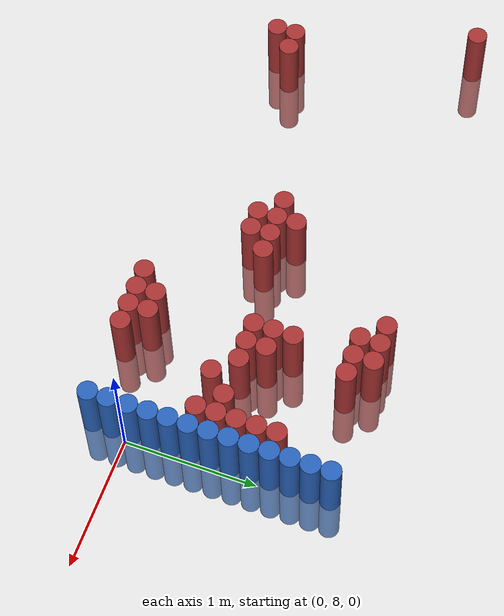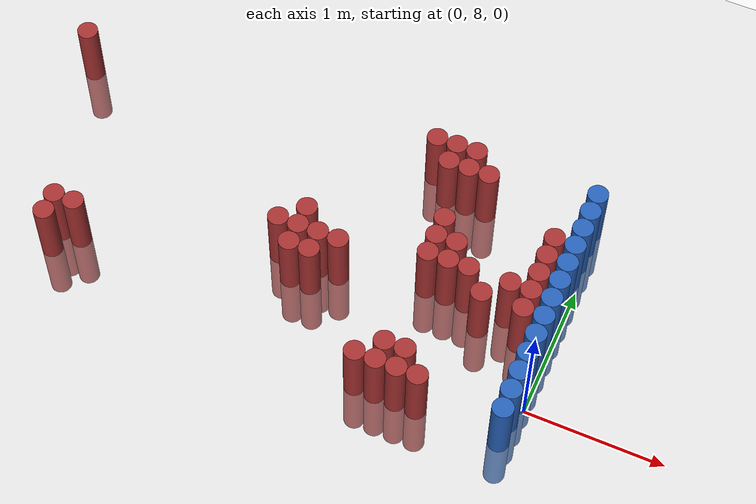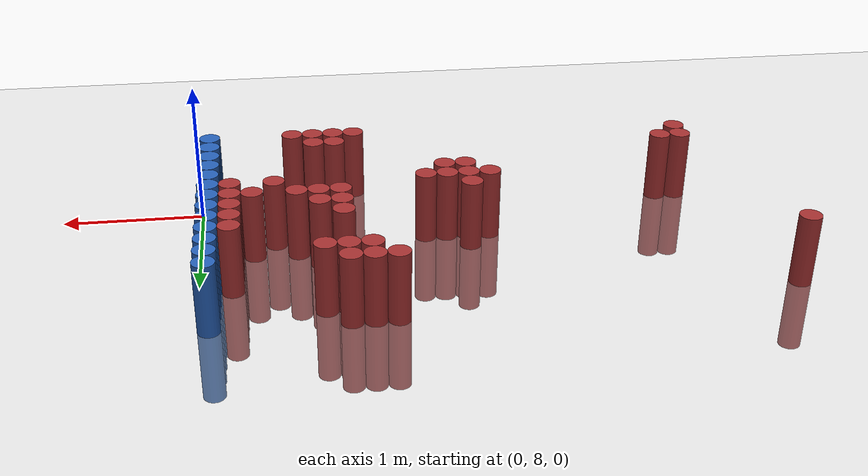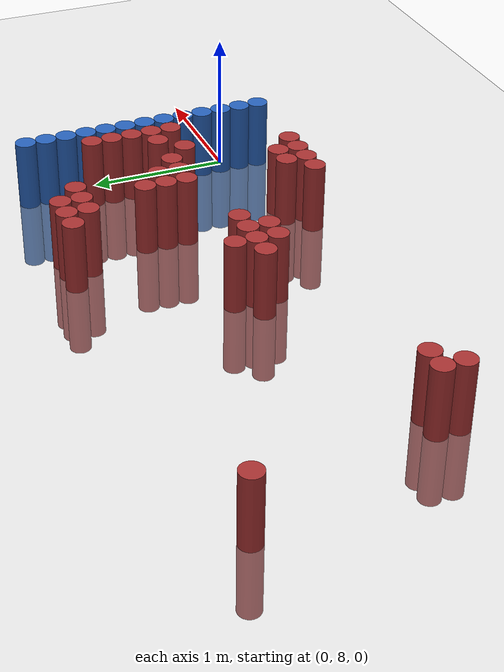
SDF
<sdf version="1.6">
 <world name="default">
  <model name="ground_plane">
   <static>1</static>
   <link name="link">
    <collision name="collision">
     <geometry><plane><normal>0 0 1</normal><size>100 100</size></plane></geometry>
     <surface><friction><ode><mu>100</mu><mu2>50</mu2></ode></friction></surface>
    </collision>
    <visual name="visual">
     <cast_shadows>0</cast_shadows>
     <geometry><plane><normal>0 0 1</normal><size>100 100</size></plane></geometry>
     <material>
      <script><uri>file://media/materials/scripts/gazebo.material</uri><name>Gazebo/Grey</name></script>
     </material>
    </visual>
   </link>
  </model>
  <model name="unit_cylinder_146">
   <static>1</static>
   <pose>-3.975000 9.375000 0.000000 0.000000 0.000000 0.000000</pose>
   <link name="link">
    <inertial>
     <mass>1</mass>
     <inertia><ixx>0.145833</ixx><ixy>0</ixy><ixz>0</ixz><iyy>0.145833</iyy><iyz>0</iyz><izz>0.125</izz></inertia>
    </inertial>
    <collision name="collision">
     <geometry><cylinder><radius>0.075000</radius><length>1</length></cylinder></geometry>
    </collision>
    <visual name="visual">
     <geometry><cylinder><radius>0.075000</radius><length>1</length></cylinder></geometry>
     <material>
      <ambient>0.648000 0.192000 0.192000 1</ambient>
      <diffuse>0.648000 0.192000 0.192000 1</diffuse>
     </material>
     <material>
      <script><name>Gazebo/Grey</name><uri>file://media/materials/scripts/gazebo.material</uri></script>
     </material>
    </visual>
   </link>
  </model>
  <model name="unit_cylinder_148">
   <static>1</static>
   <pose>-3.525000 7.875000 0.000000 0.000000 0.000000 0.000000</pose>
   <link name="link">
    <inertial>
     <mass>1</mass>
     <inertia><ixx>0.145833</ixx><ixy>0</ixy><ixz>0</ixz><iyy>0.145833</iyy><iyz>0</iyz><izz>0.125</izz></inertia>
    </inertial>
    <collision name="collision">
     <geometry><cylinder><radius>0.075000</radius><length>1</length></cylinder></geometry>
    </collision>
    <visual name="visual">
     <geometry><cylinder><radius>0.075000</radius><length>1</length></cylinder></geometry>
     <material>
      <ambient>0.648000 0.192000 0.192000 1</ambient>
      <diffuse>0.648000 0.192000 0.192000 1</diffuse>
     </material>
     <material>
      <script><name>Gazebo/Grey</name><uri>file://media/materials/scripts/gazebo.material</uri></script>
     </material>
    </visual>
   </link>
  </model>
  <model name="unit_cylinder_149">
   <static>1</static>
   <pose>-3.525000 8.025000 0.000000 0.000000 0.000000 0.000000</pose>
   <link name="link">
    <inertial>
     <mass>1</mass>
     <inertia><ixx>0.145833</ixx><ixy>0</ixy><ixz>0</ixz><iyy>0.145833</iyy><iyz>0</iyz><izz>0.125</izz></inertia>
    </inertial>
    <collision name="collision">
     <geometry><cylinder><radius>0.075000</radius><length>1</length></cylinder></geometry>
    </collision>
    <visual name="visual">
     <geometry><cylinder><radius>0.075000</radius><length>1</length></cylinder></geometry>
     <material>
      <ambient>0.648000 0.192000 0.192000 1</ambient>
      <diffuse>0.648000 0.192000 0.192000 1</diffuse>
     </material>
     <material>
      <script><name>Gazebo/Grey</name><uri>file://media/materials/scripts/gazebo.material</uri></script>
     </material>
    </visual>
   </link>
  </model>
  <model name="unit_cylinder_154">
   <static>1</static>
   <pose>-3.375000 8.025000 0.000000 0.000000 0.000000 0.000000</pose>
   <link name="link">
    <inertial>
     <mass>1</mass>
     <inertia><ixx>0.145833</ixx><ixy>0</ixy><ixz>0</ixz><iyy>0.145833</iyy><iyz>0</iyz><izz>0.125</izz></inertia>
    </inertial>
    <collision name="collision">
     <geometry><cylinder><radius>0.075000</radius><length>1</length></cylinder></geometry>
    </collision>
    <visual name="visual">
     <geometry><cylinder><radius>0.075000</radius><length>1</length></cylinder></geometry>
     <material>
      <ambient>0.648000 0.192000 0.192000 1</ambient>
      <diffuse>0.648000 0.192000 0.192000 1</diffuse>
     </material>
     <material>
      <script><name>Gazebo/Grey</name><uri>file://media/materials/scripts/gazebo.material</uri></script>
     </material>
    </visual>
   </link>
  </model>
  <model name="unit_cylinder_160">
   <static>1</static>
   <pose>-2.025000 8.475000 0.000000 0.000000 0.000000 0.000000</pose>
   <link name="link">
    <inertial>
     <mass>1</mass>
     <inertia><ixx>0.145833</ixx><ixy>0</ixy><ixz>0</ixz><iyy>0.145833</iyy><iyz>0</iyz><izz>0.125</izz></inertia>
    </inertial>
    <collision name="collision">
     <geometry><cylinder><radius>0.075000</radius><length>1</length></cylinder></geometry>
    </collision>
    <visual name="visual">
     <geometry><cylinder><radius>0.075000</radius><length>1</length></cylinder></geometry>
     <material>
      <ambient>0.648000 0.192000 0.192000 1</ambient>
      <diffuse>0.648000 0.192000 0.192000 1</diffuse>
     </material>
     <material>
      <script><name>Gazebo/Grey</name><uri>file://media/materials/scripts/gazebo.material</uri></script>
     </material>
    </visual>
   </link>
  </model>
  <model name="unit_cylinder_163">
   <static>1</static>
   <pose>-1.875000 8.325000 0.000000 0.000000 0.000000 0.000000</pose>
   <link name="link">
    <inertial>
     <mass>1</mass>
     <inertia><ixx>0.145833</ixx><ixy>0</ixy><ixz>0</ixz><iyy>0.145833</iyy><iyz>0</iyz><izz>0.125</izz></inertia>
    </inertial>
    <collision name="collision">
     <geometry><cylinder><radius>0.075000</radius><length>1</length></cylinder></geometry>
    </collision>
    <visual name="visual">
     <geometry><cylinder><radius>0.075000</radius><length>1</length></cylinder></geometry>
     <material>
      <ambient>0.648000 0.192000 0.192000 1</ambient>
      <diffuse>0.648000 0.192000 0.192000 1</diffuse>
     </material>
     <material>
      <script><name>Gazebo/Grey</name><uri>file://media/materials/scripts/gazebo.material</uri></script>
     </material>
    </visual>
   </link>
  </model>
  <model name="unit_cylinder_164">
   <static>1</static>
   <pose>-1.875000 8.475000 0.000000 0.000000 0.000000 0.000000</pose>
   <link name="link">
    <inertial>
     <mass>1</mass>
     <inertia><ixx>0.145833</ixx><ixy>0</ixy><ixz>0</ixz><iyy>0.145833</iyy><iyz>0</iyz><izz>0.125</izz></inertia>
    </inertial>
    <collision name="collision">
     <geometry><cylinder><radius>0.075000</radius><length>1</length></cylinder></geometry>
    </collision>
    <visual name="visual">
     <geometry><cylinder><radius>0.075000</radius><length>1</length></cylinder></geometry>
     <material>
      <ambient>0.648000 0.192000 0.192000 1</ambient>
      <diffuse>0.648000 0.192000 0.192000 1</diffuse>
     </material>
     <material>
      <script><name>Gazebo/Grey</name><uri>file://media/materials/scripts/gazebo.material</uri></script>
     </material>
    </visual>
   </link>
  </model>
  <model name="unit_cylinder_165">
   <static>1</static>
   <pose>-1.875000 8.625000 0.000000 0.000000 0.000000 0.000000</pose>
   <link name="link">
    <inertial>
     <mass>1</mass>
     <inertia><ixx>0.145833</ixx><ixy>0</ixy><ixz>0</ixz><iyy>0.145833</iyy><iyz>0</iyz><izz>0.125</izz></inertia>
    </inertial>
    <collision name="collision">
     <geometry><cylinder><radius>0.075000</radius><length>1</length></cylinder></geometry>
    </collision>
    <visual name="visual">
     <geometry><cylinder><radius>0.075000</radius><length>1</length></cylinder></geometry>
     <material>
      <ambient>0.648000 0.192000 0.192000 1</ambient>
      <diffuse>0.648000 0.192000 0.192000 1</diffuse>
     </material>
     <material>
      <script><name>Gazebo/Grey</name><uri>file://media/materials/scripts/gazebo.material</uri></script>
     </material>
    </visual>
   </link>
  </model>
  <model name="unit_cylinder_170">
   <static>1</static>
   <pose>-1.725000 8.325000 0.000000 0.000000 0.000000 0.000000</pose>
   <link name="link">
    <inertial>
     <mass>1</mass>
     <inertia><ixx>0.145833</ixx><ixy>0</ixy><ixz>0</ixz><iyy>0.145833</iyy><iyz>0</iyz><izz>0.125</izz></inertia>
    </inertial>
    <collision name="collision">
     <geometry><cylinder><radius>0.075000</radius><length>1</length></cylinder></geometry>
    </collision>
    <visual name="visual">
     <geometry><cylinder><radius>0.075000</radius><length>1</length></cylinder></geometry>
     <material>
      <ambient>0.648000 0.192000 0.192000 1</ambient>
      <diffuse>0.648000 0.192000 0.192000 1</diffuse>
     </material>
     <material>
      <script><name>Gazebo/Grey</name><uri>file://media/materials/scripts/gazebo.material</uri></script>
     </material>
    </visual>
   </link>
  </model>
  <model name="unit_cylinder_171">
   <static>1</static>
   <pose>-1.725000 8.475000 0.000000 0.000000 0.000000 0.000000</pose>
   <link name="link">
    <inertial>
     <mass>1</mass>
     <inertia><ixx>0.145833</ixx><ixy>0</ixy><ixz>0</ixz><iyy>0.145833</iyy><iyz>0</iyz><izz>0.125</izz></inertia>
    </inertial>
    <collision name="collision">
     <geometry><cylinder><radius>0.075000</radius><length>1</length></cylinder></geometry>
    </collision>
    <visual name="visual">
     <geometry><cylinder><radius>0.075000</radius><length>1</length></cylinder></geometry>
     <material>
      <ambient>0.648000 0.192000 0.192000 1</ambient>
      <diffuse>0.648000 0.192000 0.192000 1</diffuse>
     </material>
     <material>
      <script><name>Gazebo/Grey</name><uri>file://media/materials/scripts/gazebo.material</uri></script>
     </material>
    </visual>
   </link>
  </model>
  <model name="unit_cylinder_172">
   <static>1</static>
   <pose>-1.575000 8.475000 0.000000 0.000000 0.000000 0.000000</pose>
   <link name="link">
    <inertial>
     <mass>1</mass>
     <inertia><ixx>0.145833</ixx><ixy>0</ixy><ixz>0</ixz><iyy>0.145833</iyy><iyz>0</iyz><izz>0.125</izz></inertia>
    </inertial>
    <collision name="collision">
     <geometry><cylinder><radius>0.075000</radius><length>1</length></cylinder></geometry>
    </collision>
    <visual name="visual">
     <geometry><cylinder><radius>0.075000</radius><length>1</length></cylinder></geometry>
     <material>
      <ambient>0.648000 0.192000 0.192000 1</ambient>
      <diffuse>0.648000 0.192000 0.192000 1</diffuse>
     </material>
     <material>
      <script><name>Gazebo/Grey</name><uri>file://media/materials/scripts/gazebo.material</uri></script>
     </material>
    </visual>
   </link>
  </model>
  <model name="unit_cylinder_175">
   <static>1</static>
   <pose>-1.275000 9.525000 0.000000 0.000000 0.000000 0.000000</pose>
   <link name="link">
    <inertial>
     <mass>1</mass>
     <inertia><ixx>0.145833</ixx><ixy>0</ixy><ixz>0</ixz><iyy>0.145833</iyy><iyz>0</iyz><izz>0.125</izz></inertia>
    </inertial>
    <collision name="collision">
     <geometry><cylinder><radius>0.075000</radius><length>1</length></cylinder></geometry>
    </collision>
    <visual name="visual">
     <geometry><cylinder><radius>0.075000</radius><length>1</length></cylinder></geometry>
     <material>
      <ambient>0.648000 0.192000 0.192000 1</ambient>
      <diffuse>0.648000 0.192000 0.192000 1</diffuse>
     </material>
     <material>
      <script><name>Gazebo/Grey</name><uri>file://media/materials/scripts/gazebo.material</uri></script>
     </material>
    </visual>
   </link>
  </model>
  <model name="unit_cylinder_180">
   <static>1</static>
   <pose>-1.125000 7.725000 0.000000 0.000000 0.000000 0.000000</pose>
   <link name="link">
    <inertial>
     <mass>1</mass>
     <inertia><ixx>0.145833</ixx><ixy>0</ixy><ixz>0</ixz><iyy>0.145833</iyy><iyz>0</iyz><izz>0.125</izz></inertia>
    </inertial>
    <collision name="collision">
     <geometry><cylinder><radius>0.075000</radius><length>1</length></cylinder></geometry>
    </collision>
    <visual name="visual">
     <geometry><cylinder><radius>0.075000</radius><length>1</length></cylinder></geometry>
     <material>
      <ambient>0.648000 0.192000 0.192000 1</ambient>
      <diffuse>0.648000 0.192000 0.192000 1</diffuse>
     </material>
     <material>
      <script><name>Gazebo/Grey</name><uri>file://media/materials/scripts/gazebo.material</uri></script>
     </material>
    </visual>
   </link>
  </model>
  <model name="unit_cylinder_181">
   <static>1</static>
   <pose>-1.125000 9.375000 0.000000 0.000000 0.000000 0.000000</pose>
   <link name="link">
    <inertial>
     <mass>1</mass>
     <inertia><ixx>0.145833</ixx><ixy>0</ixy><ixz>0</ixz><iyy>0.145833</iyy><iyz>0</iyz><izz>0.125</izz></inertia>
    </inertial>
    <collision name="collision">
     <geometry><cylinder><radius>0.075000</radius><length>1</length></cylinder></geometry>
    </collision>
    <visual name="visual">
     <geometry><cylinder><radius>0.075000</radius><length>1</length></cylinder></geometry>
     <material>
      <ambient>0.648000 0.192000 0.192000 1</ambient>
      <diffuse>0.648000 0.192000 0.192000 1</diffuse>
     </material>
     <material>
      <script><name>Gazebo/Grey</name><uri>file://media/materials/scripts/gazebo.material</uri></script>
     </material>
    </visual>
   </link>
  </model>
  <model name="unit_cylinder_182">
   <static>1</static>
   <pose>-1.125000 9.525000 0.000000 0.000000 0.000000 0.000000</pose>
   <link name="link">
    <inertial>
     <mass>1</mass>
     <inertia><ixx>0.145833</ixx><ixy>0</ixy><ixz>0</ixz><iyy>0.145833</iyy><iyz>0</iyz><izz>0.125</izz></inertia>
    </inertial>
    <collision name="collision">
     <geometry><cylinder><radius>0.075000</radius><length>1</length></cylinder></geometry>
    </collision>
    <visual name="visual">
     <geometry><cylinder><radius>0.075000</radius><length>1</length></cylinder></geometry>
     <material>
      <ambient>0.648000 0.192000 0.192000 1</ambient>
      <diffuse>0.648000 0.192000 0.192000 1</diffuse>
     </material>
     <material>
      <script><name>Gazebo/Grey</name><uri>file://media/materials/scripts/gazebo.material</uri></script>
     </material>
    </visual>
   </link>
  </model>
  <model name="unit_cylinder_187">
   <static>1</static>
   <pose>-0.975000 7.725000 0.000000 0.000000 0.000000 0.000000</pose>
   <link name="link">
    <inertial>
     <mass>1</mass>
     <inertia><ixx>0.145833</ixx><ixy>0</ixy><ixz>0</ixz><iyy>0.145833</iyy><iyz>0</iyz><izz>0.125</izz></inertia>
    </inertial>
    <collision name="collision">
     <geometry><cylinder><radius>0.075000</radius><length>1</length></cylinder></geometry>
    </collision>
    <visual name="visual">
     <geometry><cylinder><radius>0.075000</radius><length>1</length></cylinder></geometry>
     <material>
      <ambient>0.648000 0.192000 0.192000 1</ambient>
      <diffuse>0.648000 0.192000 0.192000 1</diffuse>
     </material>
     <material>
      <script><name>Gazebo/Grey</name><uri>file://media/materials/scripts/gazebo.material</uri></script>
     </material>
    </visual>
   </link>
  </model>
  <model name="unit_cylinder_188">
   <static>1</static>
   <pose>-0.975000 7.875000 0.000000 0.000000 0.000000 0.000000</pose>
   <link name="link">
    <inertial>
     <mass>1</mass>
     <inertia><ixx>0.145833</ixx><ixy>0</ixy><ixz>0</ixz><iyy>0.145833</iyy><iyz>0</iyz><izz>0.125</izz></inertia>
    </inertial>
    <collision name="collision">
     <geometry><cylinder><radius>0.075000</radius><length>1</length></cylinder></geometry>
    </collision>
    <visual name="visual">
     <geometry><cylinder><radius>0.075000</radius><length>1</length></cylinder></geometry>
     <material>
      <ambient>0.648000 0.192000 0.192000 1</ambient>
      <diffuse>0.648000 0.192000 0.192000 1</diffuse>
     </material>
     <material>
      <script><name>Gazebo/Grey</name><uri>file://media/materials/scripts/gazebo.material</uri></script>
     </material>
    </visual>
   </link>
  </model>
  <model name="unit_cylinder_189">
   <static>1</static>
   <pose>-0.975000 8.625000 0.000000 0.000000 0.000000 0.000000</pose>
   <link name="link">
    <inertial>
     <mass>1</mass>
     <inertia><ixx>0.145833</ixx><ixy>0</ixy><ixz>0</ixz><iyy>0.145833</iyy><iyz>0</iyz><izz>0.125</izz></inertia>
    </inertial>
    <collision name="collision">
     <geometry><cylinder><radius>0.075000</radius><length>1</length></cylinder></geometry>
    </collision>
    <visual name="visual">
     <geometry><cylinder><radius>0.075000</radius><length>1</length></cylinder></geometry>
     <material>
      <ambient>0.648000 0.192000 0.192000 1</ambient>
      <diffuse>0.648000 0.192000 0.192000 1</diffuse>
     </material>
     <material>
      <script><name>Gazebo/Grey</name><uri>file://media/materials/scripts/gazebo.material</uri></script>
     </material>
    </visual>
   </link>
  </model>
  <model name="unit_cylinder_190">
   <static>1</static>
   <pose>-0.975000 8.775000 0.000000 0.000000 0.000000 0.000000</pose>
   <link name="link">
    <inertial>
     <mass>1</mass>
     <inertia><ixx>0.145833</ixx><ixy>0</ixy><ixz>0</ixz><iyy>0.145833</iyy><iyz>0</iyz><izz>0.125</izz></inertia>
    </inertial>
    <collision name="collision">
     <geometry><cylinder><radius>0.075000</radius><length>1</length></cylinder></geometry>
    </collision>
    <visual name="visual">
     <geometry><cylinder><radius>0.075000</radius><length>1</length></cylinder></geometry>
     <material>
      <ambient>0.648000 0.192000 0.192000 1</ambient>
      <diffuse>0.648000 0.192000 0.192000 1</diffuse>
     </material>
     <material>
      <script><name>Gazebo/Grey</name><uri>file://media/materials/scripts/gazebo.material</uri></script>
     </material>
    </visual>
   </link>
  </model>
  <model name="unit_cylinder_191">
   <static>1</static>
   <pose>-0.975000 8.925000 0.000000 0.000000 0.000000 0.000000</pose>
   <link name="link">
    <inertial>
     <mass>1</mass>
     <inertia><ixx>0.145833</ixx><ixy>0</ixy><ixz>0</ixz><iyy>0.145833</iyy><iyz>0</iyz><izz>0.125</izz></inertia>
    </inertial>
    <collision name="collision">
     <geometry><cylinder><radius>0.075000</radius><length>1</length></cylinder></geometry>
    </collision>
    <visual name="visual">
     <geometry><cylinder><radius>0.075000</radius><length>1</length></cylinder></geometry>
     <material>
      <ambient>0.648000 0.192000 0.192000 1</ambient>
      <diffuse>0.648000 0.192000 0.192000 1</diffuse>
     </material>
     <material>
      <script><name>Gazebo/Grey</name><uri>file://media/materials/scripts/gazebo.material</uri></script>
     </material>
    </visual>
   </link>
  </model>
  <model name="unit_cylinder_192">
   <static>1</static>
   <pose>-0.975000 9.375000 0.000000 0.000000 0.000000 0.000000</pose>
   <link name="link">
    <inertial>
     <mass>1</mass>
     <inertia><ixx>0.145833</ixx><ixy>0</ixy><ixz>0</ixz><iyy>0.145833</iyy><iyz>0</iyz><izz>0.125</izz></inertia>
    </inertial>
    <collision name="collision">
     <geometry><cylinder><radius>0.075000</radius><length>1</length></cylinder></geometry>
    </collision>
    <visual name="visual">
     <geometry><cylinder><radius>0.075000</radius><length>1</length></cylinder></geometry>
     <material>
      <ambient>0.648000 0.192000 0.192000 1</ambient>
      <diffuse>0.648000 0.192000 0.192000 1</diffuse>
     </material>
     <material>
      <script><name>Gazebo/Grey</name><uri>file://media/materials/scripts/gazebo.material</uri></script>
     </material>
    </visual>
   </link>
  </model>
  <model name="unit_cylinder_193">
   <static>1</static>
   <pose>-0.975000 9.525000 0.000000 0.000000 0.000000 0.000000</pose>
   <link name="link">
    <inertial>
     <mass>1</mass>
     <inertia><ixx>0.145833</ixx><ixy>0</ixy><ixz>0</ixz><iyy>0.145833</iyy><iyz>0</iyz><izz>0.125</izz></inertia>
    </inertial>
    <collision name="collision">
     <geometry><cylinder><radius>0.075000</radius><length>1</length></cylinder></geometry>
    </collision>
    <visual name="visual">
     <geometry><cylinder><radius>0.075000</radius><length>1</length></cylinder></geometry>
     <material>
      <ambient>0.648000 0.192000 0.192000 1</ambient>
      <diffuse>0.648000 0.192000 0.192000 1</diffuse>
     </material>
     <material>
      <script><name>Gazebo/Grey</name><uri>file://media/materials/scripts/gazebo.material</uri></script>
     </material>
    </visual>
   </link>
  </model>
  <model name="unit_cylinder_197">
   <static>1</static>
   <pose>-0.825000 7.725000 0.000000 0.000000 0.000000 0.000000</pose>
   <link name="link">
    <inertial>
     <mass>1</mass>
     <inertia><ixx>0.145833</ixx><ixy>0</ixy><ixz>0</ixz><iyy>0.145833</iyy><iyz>0</iyz><izz>0.125</izz></inertia>
    </inertial>
    <collision name="collision">
     <geometry><cylinder><radius>0.075000</radius><length>1</length></cylinder></geometry>
    </collision>
    <visual name="visual">
     <geometry><cylinder><radius>0.075000</radius><length>1</length></cylinder></geometry>
     <material>
      <ambient>0.648000 0.192000 0.192000 1</ambient>
      <diffuse>0.648000 0.192000 0.192000 1</diffuse>
     </material>
     <material>
      <script><name>Gazebo/Grey</name><uri>file://media/materials/scripts/gazebo.material</uri></script>
     </material>
    </visual>
   </link>
  </model>
  <model name="unit_cylinder_198">
   <static>1</static>
   <pose>-0.825000 7.875000 0.000000 0.000000 0.000000 0.000000</pose>
   <link name="link">
    <inertial>
     <mass>1</mass>
     <inertia><ixx>0.145833</ixx><ixy>0</ixy><ixz>0</ixz><iyy>0.145833</iyy><iyz>0</iyz><izz>0.125</izz></inertia>
    </inertial>
    <collision name="collision">
     <geometry><cylinder><radius>0.075000</radius><length>1</length></cylinder></geometry>
    </collision>
    <visual name="visual">
     <geometry><cylinder><radius>0.075000</radius><length>1</length></cylinder></geometry>
     <material>
      <ambient>0.648000 0.192000 0.192000 1</ambient>
      <diffuse>0.648000 0.192000 0.192000 1</diffuse>
     </material>
     <material>
      <script><name>Gazebo/Grey</name><uri>file://media/materials/scripts/gazebo.material</uri></script>
     </material>
    </visual>
   </link>
  </model>
  <model name="unit_cylinder_199">
   <static>1</static>
   <pose>-0.825000 8.625000 0.000000 0.000000 0.000000 0.000000</pose>
   <link name="link">
    <inertial>
     <mass>1</mass>
     <inertia><ixx>0.145833</ixx><ixy>0</ixy><ixz>0</ixz><iyy>0.145833</iyy><iyz>0</iyz><izz>0.125</izz></inertia>
    </inertial>
    <collision name="collision">
     <geometry><cylinder><radius>0.075000</radius><length>1</length></cylinder></geometry>
    </collision>
    <visual name="visual">
     <geometry><cylinder><radius>0.075000</radius><length>1</length></cylinder></geometry>
     <material>
      <ambient>0.648000 0.192000 0.192000 1</ambient>
      <diffuse>0.648000 0.192000 0.192000 1</diffuse>
     </material>
     <material>
      <script><name>Gazebo/Grey</name><uri>file://media/materials/scripts/gazebo.material</uri></script>
     </material>
    </visual>
   </link>
  </model>
  <model name="unit_cylinder_200">
   <static>1</static>
   <pose>-0.825000 8.775000 0.000000 0.000000 0.000000 0.000000</pose>
   <link name="link">
    <inertial>
     <mass>1</mass>
     <inertia><ixx>0.145833</ixx><ixy>0</ixy><ixz>0</ixz><iyy>0.145833</iyy><iyz>0</iyz><izz>0.125</izz></inertia>
    </inertial>
    <collision name="collision">
     <geometry><cylinder><radius>0.075000</radius><length>1</length></cylinder></geometry>
    </collision>
    <visual name="visual">
     <geometry><cylinder><radius>0.075000</radius><length>1</length></cylinder></geometry>
     <material>
      <ambient>0.648000 0.192000 0.192000 1</ambient>
      <diffuse>0.648000 0.192000 0.192000 1</diffuse>
     </material>
     <material>
      <script><name>Gazebo/Grey</name><uri>file://media/materials/scripts/gazebo.material</uri></script>
     </material>
    </visual>
   </link>
  </model>
  <model name="unit_cylinder_201">
   <static>1</static>
   <pose>-0.825000 9.375000 0.000000 0.000000 0.000000 0.000000</pose>
   <link name="link">
    <inertial>
     <mass>1</mass>
     <inertia><ixx>0.145833</ixx><ixy>0</ixy><ixz>0</ixz><iyy>0.145833</iyy><iyz>0</iyz><izz>0.125</izz></inertia>
    </inertial>
    <collision name="collision">
     <geometry><cylinder><radius>0.075000</radius><length>1</length></cylinder></geometry>
    </collision>
    <visual name="visual">
     <geometry><cylinder><radius>0.075000</radius><length>1</length></cylinder></geometry>
     <material>
      <ambient>0.648000 0.192000 0.192000 1</ambient>
      <diffuse>0.648000 0.192000 0.192000 1</diffuse>
     </material>
     <material>
      <script><name>Gazebo/Grey</name><uri>file://media/materials/scripts/gazebo.material</uri></script>
     </material>
    </visual>
   </link>
  </model>
  <model name="unit_cylinder_203">
   <static>1</static>
   <pose>-0.675000 7.725000 0.000000 0.000000 0.000000 0.000000</pose>
   <link name="link">
    <inertial>
     <mass>1</mass>
     <inertia><ixx>0.145833</ixx><ixy>0</ixy><ixz>0</ixz><iyy>0.145833</iyy><iyz>0</iyz><izz>0.125</izz></inertia>
    </inertial>
    <collision name="collision">
     <geometry><cylinder><radius>0.075000</radius><length>1</length></cylinder></geometry>
    </collision>
    <visual name="visual">
     <geometry><cylinder><radius>0.075000</radius><length>1</length></cylinder></geometry>
     <material>
      <ambient>0.648000 0.192000 0.192000 1</ambient>
      <diffuse>0.648000 0.192000 0.192000 1</diffuse>
     </material>
     <material>
      <script><name>Gazebo/Grey</name><uri>file://media/materials/scripts/gazebo.material</uri></script>
     </material>
    </visual>
   </link>
  </model>
  <model name="unit_cylinder_204">
   <static>1</static>
   <pose>-0.675000 8.625000 0.000000 0.000000 0.000000 0.000000</pose>
   <link name="link">
    <inertial>
     <mass>1</mass>
     <inertia><ixx>0.145833</ixx><ixy>0</ixy><ixz>0</ixz><iyy>0.145833</iyy><iyz>0</iyz><izz>0.125</izz></inertia>
    </inertial>
    <collision name="collision">
     <geometry><cylinder><radius>0.075000</radius><length>1</length></cylinder></geometry>
    </collision>
    <visual name="visual">
     <geometry><cylinder><radius>0.075000</radius><length>1</length></cylinder></geometry>
     <material>
      <ambient>0.648000 0.192000 0.192000 1</ambient>
      <diffuse>0.648000 0.192000 0.192000 1</diffuse>
     </material>
     <material>
      <script><name>Gazebo/Grey</name><uri>file://media/materials/scripts/gazebo.material</uri></script>
     </material>
    </visual>
   </link>
  </model>
  <model name="unit_cylinder_205">
   <static>1</static>
   <pose>-0.525000 8.475000 0.000000 0.000000 0.000000 0.000000</pose>
   <link name="link">
    <inertial>
     <mass>1</mass>
     <inertia><ixx>0.145833</ixx><ixy>0</ixy><ixz>0</ixz><iyy>0.145833</iyy><iyz>0</iyz><izz>0.125</izz></inertia>
    </inertial>
    <collision name="collision">
     <geometry><cylinder><radius>0.075000</radius><length>1</length></cylinder></geometry>
    </collision>
    <visual name="visual">
     <geometry><cylinder><radius>0.075000</radius><length>1</length></cylinder></geometry>
     <material>
      <ambient>0.648000 0.192000 0.192000 1</ambient>
      <diffuse>0.648000 0.192000 0.192000 1</diffuse>
     </material>
     <material>
      <script><name>Gazebo/Grey</name><uri>file://media/materials/scripts/gazebo.material</uri></script>
     </material>
    </visual>
   </link>
  </model>
  <model name="unit_cylinder_206">
   <static>1</static>
   <pose>-0.375000 8.625000 0.000000 0.000000 0.000000 0.000000</pose>
   <link name="link">
    <inertial>
     <mass>1</mass>
     <inertia><ixx>0.145833</ixx><ixy>0</ixy><ixz>0</ixz><iyy>0.145833</iyy><iyz>0</iyz><izz>0.125</izz></inertia>
    </inertial>
    <collision name="collision">
     <geometry><cylinder><radius>0.075000</radius><length>1</length></cylinder></geometry>
    </collision>
    <visual name="visual">
     <geometry><cylinder><radius>0.075000</radius><length>1</length></cylinder></geometry>
     <material>
      <ambient>0.648000 0.192000 0.192000 1</ambient>
      <diffuse>0.648000 0.192000 0.192000 1</diffuse>
     </material>
     <material>
      <script><name>Gazebo/Grey</name><uri>file://media/materials/scripts/gazebo.material</uri></script>
     </material>
    </visual>
   </link>
  </model>
  <model name="unit_cylinder_209">
   <static>1</static>
   <pose>-0.225000 8.475000 0.000000 0.000000 0.000000 0.000000</pose>
   <link name="link">
    <inertial>
     <mass>1</mass>
     <inertia><ixx>0.145833</ixx><ixy>0</ixy><ixz>0</ixz><iyy>0.145833</iyy><iyz>0</iyz><izz>0.125</izz></inertia>
    </inertial>
    <collision name="collision">
     <geometry><cylinder><radius>0.075000</radius><length>1</length></cylinder></geometry>
    </collision>
    <visual name="visual">
     <geometry><cylinder><radius>0.075000</radius><length>1</length></cylinder></geometry>
     <material>
      <ambient>0.648000 0.192000 0.192000 1</ambient>
      <diffuse>0.648000 0.192000 0.192000 1</diffuse>
     </material>
     <material>
      <script><name>Gazebo/Grey</name><uri>file://media/materials/scripts/gazebo.material</uri></script>
     </material>
    </visual>
   </link>
  </model>
  <model name="unit_cylinder_210">
   <static>1</static>
   <pose>-0.225000 8.625000 0.000000 0.000000 0.000000 0.000000</pose>
   <link name="link">
    <inertial>
     <mass>1</mass>
     <inertia><ixx>0.145833</ixx><ixy>0</ixy><ixz>0</ixz><iyy>0.145833</iyy><iyz>0</iyz><izz>0.125</izz></inertia>
    </inertial>
    <collision name="collision">
     <geometry><cylinder><radius>0.075000</radius><length>1</length></cylinder></geometry>
    </collision>
    <visual name="visual">
     <geometry><cylinder><radius>0.075000</radius><length>1</length></cylinder></geometry>
     <material>
      <ambient>0.648000 0.192000 0.192000 1</ambient>
      <diffuse>0.648000 0.192000 0.192000 1</diffuse>
     </material>
     <material>
      <script><name>Gazebo/Grey</name><uri>file://media/materials/scripts/gazebo.material</uri></script>
     </material>
    </visual>
   </link>
  </model>
  <model name="unit_cylinder_211">
   <static>1</static>
   <pose>-0.225000 8.775000 0.000000 0.000000 0.000000 0.000000</pose>
   <link name="link">
    <inertial>
     <mass>1</mass>
     <inertia><ixx>0.145833</ixx><ixy>0</ixy><ixz>0</ixz><iyy>0.145833</iyy><iyz>0</iyz><izz>0.125</izz></inertia>
    </inertial>
    <collision name="collision">
     <geometry><cylinder><radius>0.075000</radius><length>1</length></cylinder></geometry>
    </collision>
    <visual name="visual">
     <geometry><cylinder><radius>0.075000</radius><length>1</length></cylinder></geometry>
     <material>
      <ambient>0.648000 0.192000 0.192000 1</ambient>
      <diffuse>0.648000 0.192000 0.192000 1</diffuse>
     </material>
     <material>
      <script><name>Gazebo/Grey</name><uri>file://media/materials/scripts/gazebo.material</uri></script>
     </material>
    </visual>
   </link>
  </model>
  <model name="unit_cylinder_212">
   <static>1</static>
   <pose>-0.225000 8.925000 0.000000 0.000000 0.000000 0.000000</pose>
   <link name="link">
    <inertial>
     <mass>1</mass>
     <inertia><ixx>0.145833</ixx><ixy>0</ixy><ixz>0</ixz><iyy>0.145833</iyy><iyz>0</iyz><izz>0.125</izz></inertia>
    </inertial>
    <collision name="collision">
     <geometry><cylinder><radius>0.075000</radius><length>1</length></cylinder></geometry>
    </collision>
    <visual name="visual">
     <geometry><cylinder><radius>0.075000</radius><length>1</length></cylinder></geometry>
     <material>
      <ambient>0.648000 0.192000 0.192000 1</ambient>
      <diffuse>0.648000 0.192000 0.192000 1</diffuse>
     </material>
     <material>
      <script><name>Gazebo/Grey</name><uri>file://media/materials/scripts/gazebo.material</uri></script>
     </material>
    </visual>
   </link>
  </model>
  <model name="unit_cylinder_213">
   <static>1</static>
   <pose>-0.225000 9.075000 0.000000 0.000000 0.000000 0.000000</pose>
   <link name="link">
    <inertial>
     <mass>1</mass>
     <inertia><ixx>0.145833</ixx><ixy>0</ixy><ixz>0</ixz><iyy>0.145833</iyy><iyz>0</iyz><izz>0.125</izz></inertia>
    </inertial>
    <collision name="collision">
     <geometry><cylinder><radius>0.075000</radius><length>1</length></cylinder></geometry>
    </collision>
    <visual name="visual">
     <geometry><cylinder><radius>0.075000</radius><length>1</length></cylinder></geometry>
     <material>
      <ambient>0.648000 0.192000 0.192000 1</ambient>
      <diffuse>0.648000 0.192000 0.192000 1</diffuse>
     </material>
     <material>
      <script><name>Gazebo/Grey</name><uri>file://media/materials/scripts/gazebo.material</uri></script>
     </material>
    </visual>
   </link>
  </model>
  <model name="unit_cylinder_231">
   <static>1</static>
   <pose>-0.075000 7.725000 0.000000 0.000000 0.000000 0.000000</pose>
   <link name="link">
    <inertial>
     <mass>1</mass>
     <inertia><ixx>0.145833</ixx><ixy>0</ixy><ixz>0</ixz><iyy>0.145833</iyy><iyz>0</iyz><izz>0.125</izz></inertia>
    </inertial>
    <collision name="collision">
     <geometry><cylinder><radius>0.075000</radius><length>1</length></cylinder></geometry>
    </collision>
    <visual name="visual">
     <geometry><cylinder><radius>0.075000</radius><length>1</length></cylinder></geometry>
     <material>
      <ambient>0.152000 0.379000 0.720000 1</ambient>
      <diffuse>0.152000 0.379000 0.720000 1</diffuse>
     </material>
     <material>
      <script><name>Gazebo/Grey</name><uri>file://media/materials/scripts/gazebo.material</uri></script>
     </material>
    </visual>
   </link>
  </model>
  <model name="unit_cylinder_232">
   <static>1</static>
   <pose>-0.075000 7.875000 0.000000 0.000000 0.000000 0.000000</pose>
   <link name="link">
    <inertial>
     <mass>1</mass>
     <inertia><ixx>0.145833</ixx><ixy>0</ixy><ixz>0</ixz><iyy>0.145833</iyy><iyz>0</iyz><izz>0.125</izz></inertia>
    </inertial>
    <collision name="collision">
     <geometry><cylinder><radius>0.075000</radius><length>1</length></cylinder></geometry>
    </collision>
    <visual name="visual">
     <geometry><cylinder><radius>0.075000</radius><length>1</length></cylinder></geometry>
     <material>
      <ambient>0.152000 0.379000 0.720000 1</ambient>
      <diffuse>0.152000 0.379000 0.720000 1</diffuse>
     </material>
     <material>
      <script><name>Gazebo/Grey</name><uri>file://media/materials/scripts/gazebo.material</uri></script>
     </material>
    </visual>
   </link>
  </model>
  <model name="unit_cylinder_233">
   <static>1</static>
   <pose>-0.075000 8.025000 0.000000 0.000000 0.000000 0.000000</pose>
   <link name="link">
    <inertial>
     <mass>1</mass>
     <inertia><ixx>0.145833</ixx><ixy>0</ixy><ixz>0</ixz><iyy>0.145833</iyy><iyz>0</iyz><izz>0.125</izz></inertia>
    </inertial>
    <collision name="collision">
     <geometry><cylinder><radius>0.075000</radius><length>1</length></cylinder></geometry>
    </collision>
    <visual name="visual">
     <geometry><cylinder><radius>0.075000</radius><length>1</length></cylinder></geometry>
     <material>
      <ambient>0.152000 0.379000 0.720000 1</ambient>
      <diffuse>0.152000 0.379000 0.720000 1</diffuse>
     </material>
     <material>
      <script><name>Gazebo/Grey</name><uri>file://media/materials/scripts/gazebo.material</uri></script>
     </material>
    </visual>
   </link>
  </model>
  <model name="unit_cylinder_234">
   <static>1</static>
   <pose>-0.075000 8.175000 0.000000 0.000000 0.000000 0.000000</pose>
   <link name="link">
    <inertial>
     <mass>1</mass>
     <inertia><ixx>0.145833</ixx><ixy>0</ixy><ixz>0</ixz><iyy>0.145833</iyy><iyz>0</iyz><izz>0.125</izz></inertia>
    </inertial>
    <collision name="collision">
     <geometry><cylinder><radius>0.075000</radius><length>1</length></cylinder></geometry>
    </collision>
    <visual name="visual">
     <geometry><cylinder><radius>0.075000</radius><length>1</length></cylinder></geometry>
     <material>
      <ambient>0.152000 0.379000 0.720000 1</ambient>
      <diffuse>0.152000 0.379000 0.720000 1</diffuse>
     </material>
     <material>
      <script><name>Gazebo/Grey</name><uri>file://media/materials/scripts/gazebo.material</uri></script>
     </material>
    </visual>
   </link>
  </model>
  <model name="unit_cylinder_235">
   <static>1</static>
   <pose>-0.075000 8.325000 0.000000 0.000000 0.000000 0.000000</pose>
   <link name="link">
    <inertial>
     <mass>1</mass>
     <inertia><ixx>0.145833</ixx><ixy>0</ixy><ixz>0</ixz><iyy>0.145833</iyy><iyz>0</iyz><izz>0.125</izz></inertia>
    </inertial>
    <collision name="collision">
     <geometry><cylinder><radius>0.075000</radius><length>1</length></cylinder></geometry>
    </collision>
    <visual name="visual">
     <geometry><cylinder><radius>0.075000</radius><length>1</length></cylinder></geometry>
     <material>
      <ambient>0.152000 0.379000 0.720000 1</ambient>
      <diffuse>0.152000 0.379000 0.720000 1</diffuse>
     </material>
     <material>
      <script><name>Gazebo/Grey</name><uri>file://media/materials/scripts/gazebo.material</uri></script>
     </material>
    </visual>
   </link>
  </model>
  <model name="unit_cylinder_236">
   <static>1</static>
   <pose>-0.075000 8.475000 0.000000 0.000000 0.000000 0.000000</pose>
   <link name="link">
    <inertial>
     <mass>1</mass>
     <inertia><ixx>0.145833</ixx><ixy>0</ixy><ixz>0</ixz><iyy>0.145833</iyy><iyz>0</iyz><izz>0.125</izz></inertia>
    </inertial>
    <collision name="collision">
     <geometry><cylinder><radius>0.075000</radius><length>1</length></cylinder></geometry>
    </collision>
    <visual name="visual">
     <geometry><cylinder><radius>0.075000</radius><length>1</length></cylinder></geometry>
     <material>
      <ambient>0.152000 0.379000 0.720000 1</ambient>
      <diffuse>0.152000 0.379000 0.720000 1</diffuse>
     </material>
     <material>
      <script><name>Gazebo/Grey</name><uri>file://media/materials/scripts/gazebo.material</uri></script>
     </material>
    </visual>
   </link>
  </model>
  <model name="unit_cylinder_237">
   <static>1</static>
   <pose>-0.075000 8.625000 0.000000 0.000000 0.000000 0.000000</pose>
   <link name="link">
    <inertial>
     <mass>1</mass>
     <inertia><ixx>0.145833</ixx><ixy>0</ixy><ixz>0</ixz><iyy>0.145833</iyy><iyz>0</iyz><izz>0.125</izz></inertia>
    </inertial>
    <collision name="collision">
     <geometry><cylinder><radius>0.075000</radius><length>1</length></cylinder></geometry>
    </collision>
    <visual name="visual">
     <geometry><cylinder><radius>0.075000</radius><length>1</length></cylinder></geometry>
     <material>
      <ambient>0.152000 0.379000 0.720000 1</ambient>
      <diffuse>0.152000 0.379000 0.720000 1</diffuse>
     </material>
     <material>
      <script><name>Gazebo/Grey</name><uri>file://media/materials/scripts/gazebo.material</uri></script>
     </material>
    </visual>
   </link>
  </model>
  <model name="unit_cylinder_238">
   <static>1</static>
   <pose>-0.075000 8.775000 0.000000 0.000000 0.000000 0.000000</pose>
   <link name="link">
    <inertial>
     <mass>1</mass>
     <inertia><ixx>0.145833</ixx><ixy>0</ixy><ixz>0</ixz><iyy>0.145833</iyy><iyz>0</iyz><izz>0.125</izz></inertia>
    </inertial>
    <collision name="collision">
     <geometry><cylinder><radius>0.075000</radius><length>1</length></cylinder></geometry>
    </collision>
    <visual name="visual">
     <geometry><cylinder><radius>0.075000</radius><length>1</length></cylinder></geometry>
     <material>
      <ambient>0.152000 0.379000 0.720000 1</ambient>
      <diffuse>0.152000 0.379000 0.720000 1</diffuse>
     </material>
     <material>
      <script><name>Gazebo/Grey</name><uri>file://media/materials/scripts/gazebo.material</uri></script>
     </material>
    </visual>
   </link>
  </model>
  <model name="unit_cylinder_239">
   <static>1</static>
   <pose>-0.075000 8.925000 0.000000 0.000000 0.000000 0.000000</pose>
   <link name="link">
    <inertial>
     <mass>1</mass>
     <inertia><ixx>0.145833</ixx><ixy>0</ixy><ixz>0</ixz><iyy>0.145833</iyy><iyz>0</iyz><izz>0.125</izz></inertia>
    </inertial>
    <collision name="collision">
     <geometry><cylinder><radius>0.075000</radius><length>1</length></cylinder></geometry>
    </collision>
    <visual name="visual">
     <geometry><cylinder><radius>0.075000</radius><length>1</length></cylinder></geometry>
     <material>
      <ambient>0.152000 0.379000 0.720000 1</ambient>
      <diffuse>0.152000 0.379000 0.720000 1</diffuse>
     </material>
     <material>
      <script><name>Gazebo/Grey</name><uri>file://media/materials/scripts/gazebo.material</uri></script>
     </material>
    </visual>
   </link>
  </model>
  <model name="unit_cylinder_240">
   <static>1</static>
   <pose>-0.075000 9.075000 0.000000 0.000000 0.000000 0.000000</pose>
   <link name="link">
    <inertial>
     <mass>1</mass>
     <inertia><ixx>0.145833</ixx><ixy>0</ixy><ixz>0</ixz><iyy>0.145833</iyy><iyz>0</iyz><izz>0.125</izz></inertia>
    </inertial>
    <collision name="collision">
     <geometry><cylinder><radius>0.075000</radius><length>1</length></cylinder></geometry>
    </collision>
    <visual name="visual">
     <geometry><cylinder><radius>0.075000</radius><length>1</length></cylinder></geometry>
     <material>
      <ambient>0.152000 0.379000 0.720000 1</ambient>
      <diffuse>0.152000 0.379000 0.720000 1</diffuse>
     </material>
     <material>
      <script><name>Gazebo/Grey</name><uri>file://media/materials/scripts/gazebo.material</uri></script>
     </material>
    </visual>
   </link>
  </model>
  <model name="unit_cylinder_241">
   <static>1</static>
   <pose>-0.075000 9.225000 0.000000 0.000000 0.000000 0.000000</pose>
   <link name="link">
    <inertial>
     <mass>1</mass>
     <inertia><ixx>0.145833</ixx><ixy>0</ixy><ixz>0</ixz><iyy>0.145833</iyy><iyz>0</iyz><izz>0.125</izz></inertia>
    </inertial>
    <collision name="collision">
     <geometry><cylinder><radius>0.075000</radius><length>1</length></cylinder></geometry>
    </collision>
    <visual name="visual">
     <geometry><cylinder><radius>0.075000</radius><length>1</length></cylinder></geometry>
     <material>
      <ambient>0.152000 0.379000 0.720000 1</ambient>
      <diffuse>0.152000 0.379000 0.720000 1</diffuse>
     </material>
     <material>
      <script><name>Gazebo/Grey</name><uri>file://media/materials/scripts/gazebo.material</uri></script>
     </material>
    </visual>
   </link>
  </model>
  <model name="unit_cylinder_242">
   <static>1</static>
   <pose>-0.075000 9.375000 0.000000 0.000000 0.000000 0.000000</pose>
   <link name="link">
    <inertial>
     <mass>1</mass>
     <inertia><ixx>0.145833</ixx><ixy>0</ixy><ixz>0</ixz><iyy>0.145833</iyy><iyz>0</iyz><izz>0.125</izz></inertia>
    </inertial>
    <collision name="collision">
     <geometry><cylinder><radius>0.075000</radius><length>1</length></cylinder></geometry>
    </collision>
    <visual name="visual">
     <geometry><cylinder><radius>0.075000</radius><length>1</length></cylinder></geometry>
     <material>
      <ambient>0.152000 0.379000 0.720000 1</ambient>
      <diffuse>0.152000 0.379000 0.720000 1</diffuse>
     </material>
     <material>
      <script><name>Gazebo/Grey</name><uri>file://media/materials/scripts/gazebo.material</uri></script>
     </material>
    </visual>
   </link>
  </model>
  <model name="unit_cylinder_243">
   <static>1</static>
   <pose>-0.075000 9.525000 0.000000 0.000000 0.000000 0.000000</pose>
   <link name="link">
    <inertial>
     <mass>1</mass>
     <inertia><ixx>0.145833</ixx><ixy>0</ixy><ixz>0</ixz><iyy>0.145833</iyy><iyz>0</iyz><izz>0.125</izz></inertia>
    </inertial>
    <collision name="collision">
     <geometry><cylinder><radius>0.075000</radius><length>1</length></cylinder></geometry>
    </collision>
    <visual name="visual">
     <geometry><cylinder><radius>0.075000</radius><length>1</length></cylinder></geometry>
     <material>
      <ambient>0.152000 0.379000 0.720000 1</ambient>
      <diffuse>0.152000 0.379000 0.720000 1</diffuse>
     </material>
     <material>
      <script><name>Gazebo/Grey</name><uri>file://media/materials/scripts/gazebo.material</uri></script>
     </material>
    </visual>
   </link>
  </model>
 </world>
</sdf>
